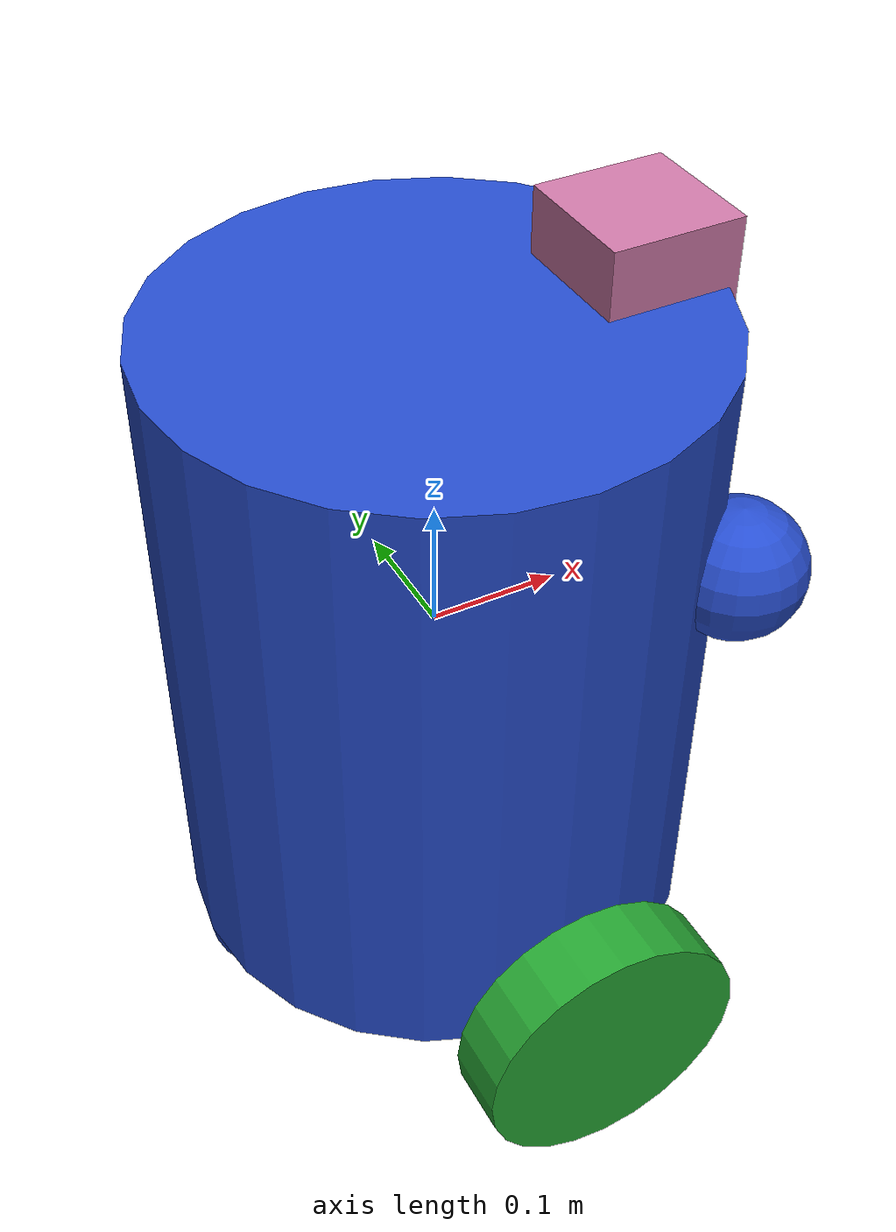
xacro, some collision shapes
<?xml version='1.0'?>

<robot name="my_robot" xmlns:xacro="http://www.ros.org/wiki/xacro">
  <xacro:include filename="$(find my_robot)/urdf/my_robot.gazebo" />

  <link name="robot_footprint"></link>

  <joint name="robot_footprint_joint" type="fixed">
    <origin xyz="0 0 0" rpy="0 0 0" />
    <parent link="robot_footprint"/>
    <child link="chassis" />
  </joint>

  <!--Links(chassis)-->
  <link name='chassis'>
    <pose>0 0 0.3 0 0 0</pose>

    <inertial>
      <mass value="15.0"/>
      <origin xyz="0.0 0 0" rpy=" 0 0 0"/>
      <inertia
          ixx="0.1" ixy="0" ixz="0"
          iyy="0.1" iyz="0"
          izz="0.1"
      />
    </inertial>

    <collision name='collision'>
      <origin xyz="0 0 0" rpy=" 0 0 0"/>
      <geometry>
        <cylinder radius=".2" length=".5"/>
      </geometry>
    </collision>

    <visual name='chassis_visual'>
      <origin xyz="0 0 0" rpy=" 0 0 0"/>
      <geometry>
        <cylinder radius=".2" length=".5"/>
      </geometry>
    </visual>

    <collision name='back_caster_collision'>
      <origin xyz="-0.15 0 -0.25" rpy=" 0 0 0"/>
      <geometry>
        <sphere radius="0.0499"/>
      </geometry>
    </collision>

    <visual name='back_caster_visual'>
      <origin xyz="-0.15 0 -0.25" rpy=" 0 0 0"/>
      <geometry>
        <sphere radius="0.05"/>
      </geometry>
    </visual>

    <collision name='front_caster_collision'>
      <origin xyz="0.15 0 -0.25" rpy=" 0 0 0"/>
      <geometry>
        <sphere radius="0.0499"/>
      </geometry>
    </collision>

    <visual name='front_caster_visual'>
      <origin xyz="0.15 0 -0.25" rpy=" 0 0 0"/>
      <geometry>
        <sphere radius="0.05"/>
      </geometry>
    </visual>

    <collision name='left_eye_collision'>
      <origin xyz="0.15 0.15 0.1" rpy=" 0 0 0"/>
      <geometry>
        <sphere radius="0.0499"/>
      </geometry>
    </collision>

    <visual name='left_eye_visual'>
      <origin xyz="0.15 0.15 0.1" rpy=" 0 0 0"/>
      <geometry>
        <sphere radius="0.05"/>
      </geometry>
    </visual>

    <collision name='right_eye_collision'>
      <origin xyz="0.15 -0.15 0.1" rpy=" 0 0 0"/>
      <geometry>
        <sphere radius="0.0499"/>
      </geometry>
    </collision>

    <visual name='right_eye_visual'>
      <origin xyz="0.15 -0.15 0.1" rpy=" 0 0 0"/>
      <geometry>
        <sphere radius="0.05"/>
      </geometry>
    </visual>

  </link>

  <!--Links(left_wheel)-->
  <link name='left_wheel'>

    <inertial>
      <mass value="5.0"/>
      <origin xyz="0 0 0" rpy=" 0 1.5707 1.5707"/>
      <inertia
          ixx="0.1" ixy="0" ixz="0"
          iyy="0.1" iyz="0"
          izz="0.1"
      />
    </inertial>

    <collision name='left_wheel_collision'>
      <origin xyz="0 0 0" rpy=" 0 1.5707 1.5707"/>
      <geometry>
        <cylinder radius= '0.1' length= '0.05'/>
      </geometry>
    </collision>

    <visual name='left_wheel_visual'>
      <origin xyz="0 0 0" rpy=" 0 1.5707 1.5707"/>
      <geometry>
        <cylinder radius= '0.1' length= '0.05'/>
      </geometry>
    </visual>

  </link>

  <joint type="continuous" name="left_wheel_hinge">
    <origin xyz="0 0.25 -0.2" rpy="0 0 0"/>
    <child link="left_wheel"/>
    <parent link="chassis"/>
    <axis xyz="0 1 0" rpy="0 0 0"/>
    <limit effort="10000" velocity="1000"/>
    <dynamics damping="1.0" friction="1.0"/>
  </joint>

  <!--Links(right_wheel)-->
  <link name='right_wheel'>

    <inertial>
      <mass value="5.0"/>
      <origin xyz="0 0 0" rpy=" 0 1.5707 1.5707"/>
      <inertia
          ixx="0.1" ixy="0" ixz="0"
          iyy="0.1" iyz="0"
          izz="0.1"
      />
    </inertial>

    <collision name='right_wheel_collision'>
      <origin xyz="0 0 0" rpy=" 0 1.5707 1.5707"/>
      <geometry>
        <cylinder radius= '0.1' length= '0.05'/>
      </geometry>
    </collision>

    <visual name='right_wheel_visual'>
      <origin xyz="0 0 0" rpy=" 0 1.5707 1.5707"/>
      <geometry>
        <cylinder radius= '0.1' length= '0.05'/>
      </geometry>
    </visual>

  </link>

  <joint type="continuous" name="right_wheel_hinge">
    <origin xyz="0 -0.25 -0.2" rpy="0 0 0"/>
    <child link="right_wheel"/>
    <parent link="chassis"/>
    <axis xyz="0 1 0" rpy="0 0 0"/>
    <limit effort="10000" velocity="1000"/>
    <dynamics damping="1.0" friction="1.0"/>
  </joint>

  <!--Links(camera)-->
  <link name='camera'>

    <inertial>
      <mass value="0.1"/>
      <origin xyz="0 0 0" rpy=" 0 0 0"/>
      <box_inertia m="0.1" x="0.05" y="0.05" z="0.05"/>
      <inertia
          ixx="1e-6" ixy="0" ixz="0"
          iyy="1e-6" iyz="0"
          izz="1e-6"
      />
    </inertial>

    <collision name='camera_collision'>
      <origin xyz="0 0 0" rpy=" 0 0 0"/>
      <geometry>
        <box size=".05 .05 .05"/>
      </geometry>
    </collision>

    <visual name='camera_visual'>
      <origin xyz="0 0 0" rpy=" 0 0 0"/>
      <geometry>
        <box size=".05 .05 .05"/>
      </geometry>
    </visual>

  </link>

  <joint type="fixed" name="camera_joint">
    <origin xyz="0.2 0 0" rpy="0 0 0"/>
    <child link="camera"/>
    <parent link="chassis"/>
    <axis xyz="0 1 0" rpy="0 0 0"/>
  </joint>

  <joint name="camera_optical_joint" type="fixed">
    <origin xyz="0 0 0" rpy="-1.5707 0 -1.5707"/>
    <parent link="camera"/>
    <child link="camera_link_optical"/>
  </joint>

  <link name="camera_link_optical">
  </link>

  <!--Links(hokuyo)-->
  <link name='hokuyo'>

    <inertial>
      <mass value="1e-5"/>
      <origin xyz="0 0 0" rpy=" 0 0 0"/>
      <inertia
          ixx="1e-6" ixy="0" ixz="0"
          iyy="1e-6" iyz="0"
          izz="1e-6"
      />
    </inertial>

    <collision name='hokuyo_collision'>
      <origin xyz="0 0 0" rpy=" 0 0 0"/>
      <geometry>
        <box size=".1 .1 .1"/>
      </geometry>
    </collision>

    <visual name='hokuyo_visual'>
      <origin xyz="0 0 0" rpy=" 0 0 0"/>
      <geometry>
         <mesh filename="package://my_robot/meshes/hokuyo.dae"/>
      </geometry>
    </visual>

  </link>

  <joint type="fixed" name="hokuyo_joint">
    <origin xyz="0.15 0 0.25" rpy="0 0 0"/>
    <child link="hokuyo"/>
    <parent link="chassis"/>
    <axis xyz="0 1 0" rpy="0 0 0"/>
  </joint>

   <!--give your robot some color-->
  <gazebo reference="chassis">
    <material>Gazebo/Blue</material>
  </gazebo>

  <gazebo reference="left_wheel">
    <material>Gazebo/Green</material>
  </gazebo>

  <gazebo reference="right_wheel">
    <material>Gazebo/Green</material>
  </gazebo>

  <gazebo reference="camera">
    <material>Gazebo/Red</material>
  </gazebo>

</robot>
